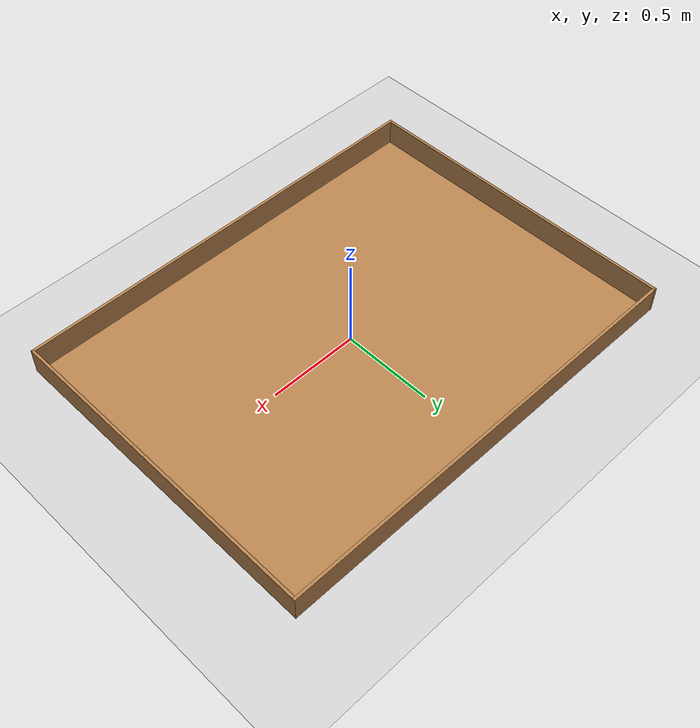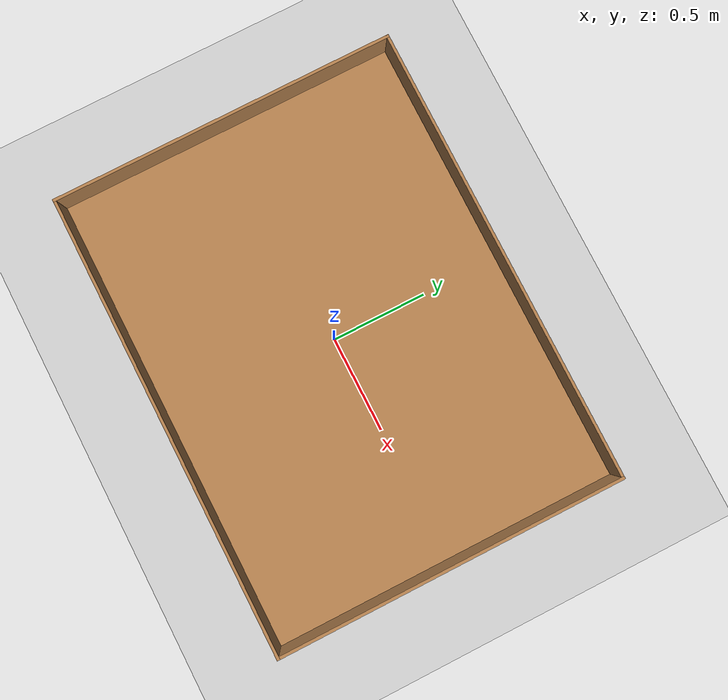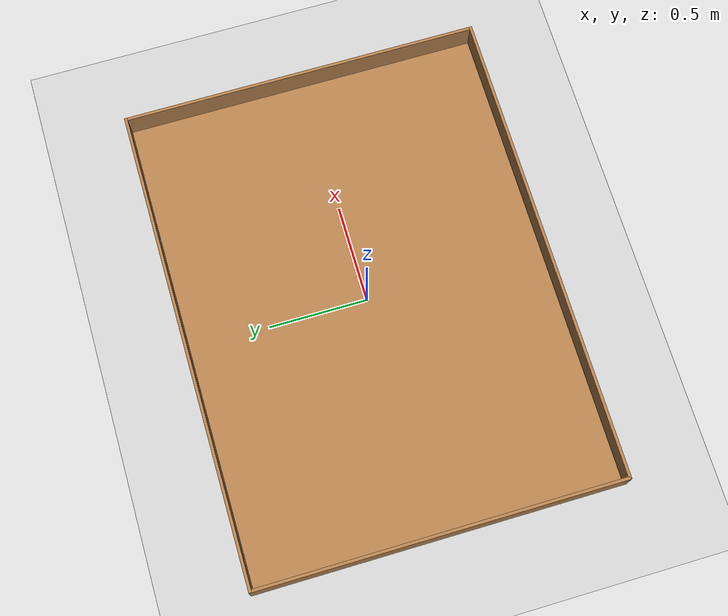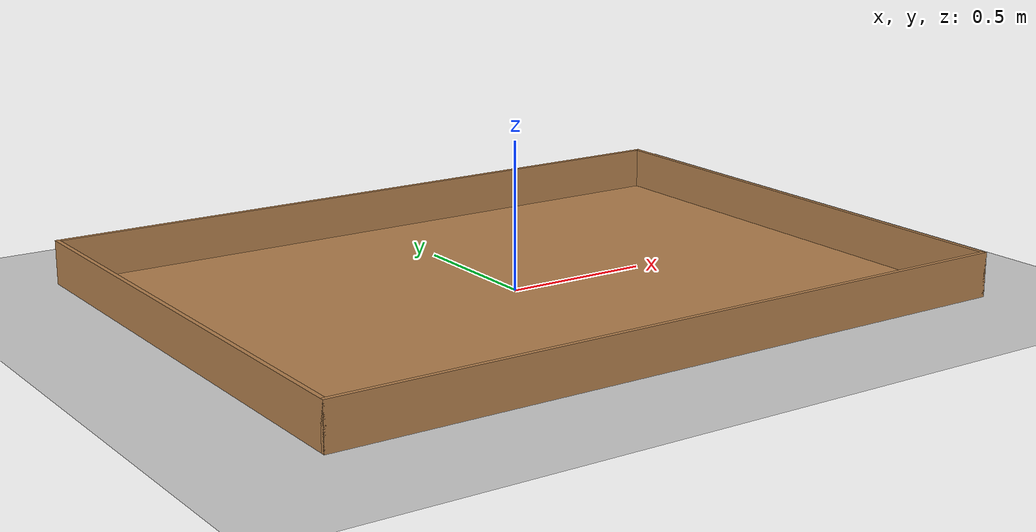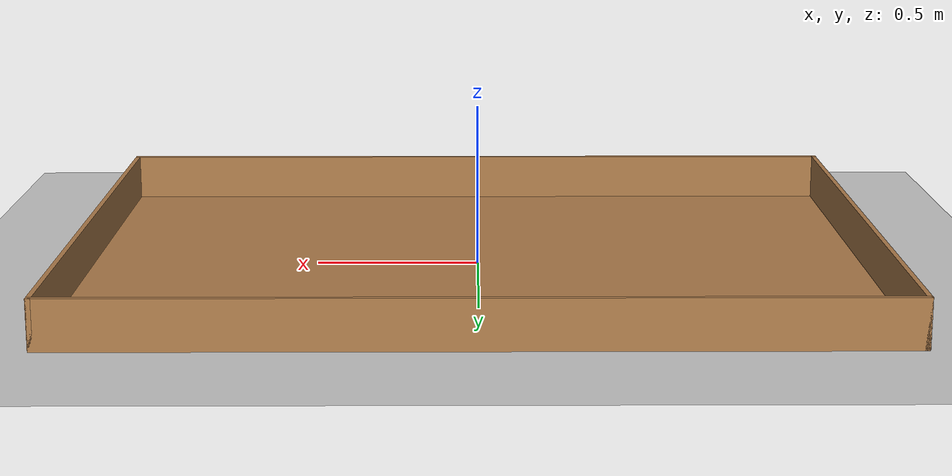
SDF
<?xml version="1.0"?>
<sdf version="1.5">
  <world name="default">
    <gui fullscreen='0'>
      <camera name='user_default'>
        <pose frame=''>0.602948 -0.001582 0.357965 -0 0.6 -3.141</pose>
        <view_controller>orbit</view_controller>
        <projection_type>perspective</projection_type>
      </camera>
    </gui>

    <include>
      <uri>model://ground_plane</uri>
    </include>

    <include>
      <uri>model://sun</uri>
    </include>

    <model name='TheWall'>
      <pose frame=''>0 0 0 0 0 0</pose>
      <link name='Wall'>
        <collision name='Wall_0_Collision'>
          <pose frame=''>0 0.9075 0.075 0 0 0</pose>
          <geometry>
            <box>
              <size>2.43 0.015 0.15</size>
            </box>
          </geometry>
        </collision>
        <visual name='Wall_0_Visual'>
          <pose frame=''>0 0.9075 0.075 0 0 0</pose>
          <geometry>
            <box>
              <size>2.43 0.015 0.15</size>
            </box>
          </geometry>
          <material>
            <script>
              <uri>file://media/materials/scripts/gazebo.material</uri>
              <name>Gazebo/Wood</name>
            </script>
            <ambient>1 1 1 1</ambient>
          </material>
        </visual>

        <collision name='Wall_1_Collision'>
          <pose frame=''>0 -0.9075 0.075 0 0 0</pose>
          <geometry>
            <box>
              <size>2.43 0.015 0.15</size>
            </box>
          </geometry>
        </collision>
        <visual name='Wall_1_Visual'>
          <pose frame=''>0 -0.9075 0.075 0 0 0</pose>
          <geometry>
            <box>
              <size>2.43 0.015 0.15</size>
            </box>
          </geometry>
          <material>
            <script>
              <uri>file://media/materials/scripts/gazebo.material</uri>
              <name>Gazebo/Wood</name>
            </script>
            <ambient>1 1 1 1</ambient>
          </material>
        </visual>

        <collision name='Wall_2_Collision'>
          <pose frame=''>1.2075 0.0 0.075 0 0 0</pose>
          <geometry>
            <box>
              <size>0.015 1.830 0.15</size>
            </box>
          </geometry>
        </collision>
        <visual name='Wall_2_Visual'>
          <pose frame=''>1.2075 0.0 0.075 0 0 0</pose>
          <geometry>
            <box>
              <size>0.015 1.830 0.15</size>
            </box>
          </geometry>
          <material>
            <script>
              <uri>file://media/materials/scripts/gazebo.material</uri>
              <name>Gazebo/Wood</name>
            </script>
            <ambient>1 1 1 1</ambient>
          </material>
        </visual>

        <collision name='Wall_3_Collision'>
          <pose frame=''>-1.2075 0.0 0.075 0 0 0</pose>
            <geometry>
            <box>
              <size>0.015 1.830 0.15</size>
            </box>
          </geometry>
        </collision>
        <visual name='Wall_3_Visual'>
          <pose frame=''>-1.2075 0.0 0.075 0 0 0</pose>
          <geometry>
            <box>
              <size>0.015 1.830 0.15</size>
            </box>
          </geometry>
          <material>
            <script>
              <uri>file://media/materials/scripts/gazebo.material</uri>
              <name>Gazebo/Wood</name>
            </script>
            <ambient>1 1 1 1</ambient>
          </material>
        </visual>
      </link>

      <link name='TheFloor'>
        <pose frame=''>0 0 0 0 0 0</pose>
        <collision name='Wall_1_Collision'>
          <geometry>
            <box>
              <size>2.400 1.800 0.01</size>
            </box>
          </geometry>
        </collision>
        <visual name='Wall_1_Visual'>
          <geometry>
            <box>
              <size>2.400 1.800 0.01</size>
            </box>
          </geometry>
          <material>
            <script>
              <uri>file://media/materials/scripts/gazebo.material</uri>
              <name>Gazebo/Wood</name>
            </script>
            <ambient>1 1 1 1</ambient>
          </material>
        </visual>
      </link>

      <static>1</static>
    </model>

  </world>
</sdf>
